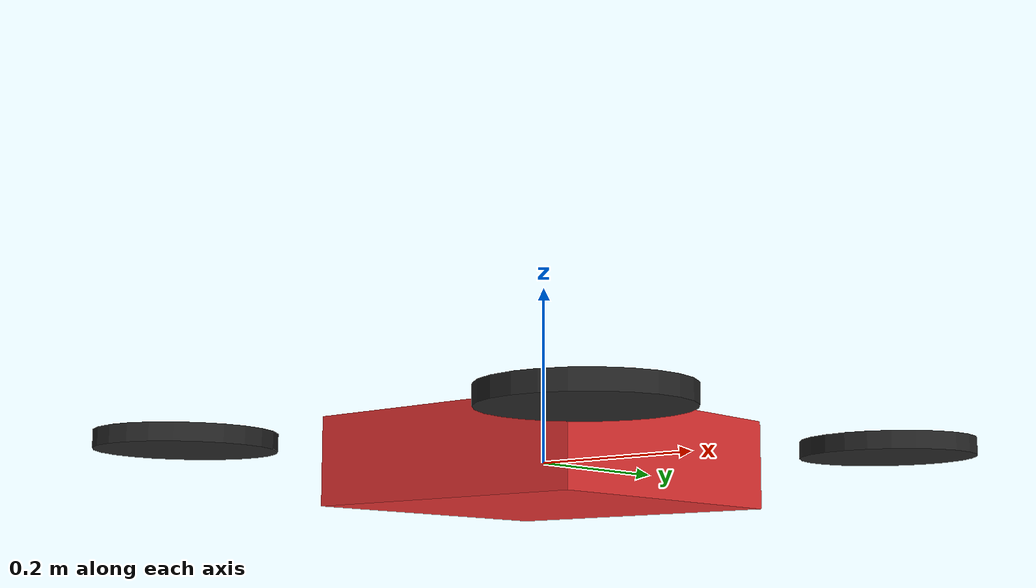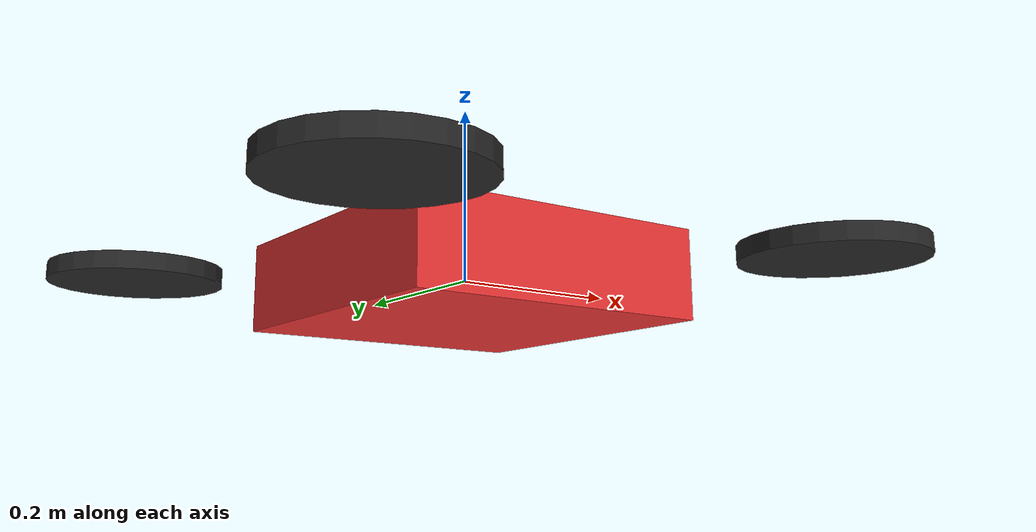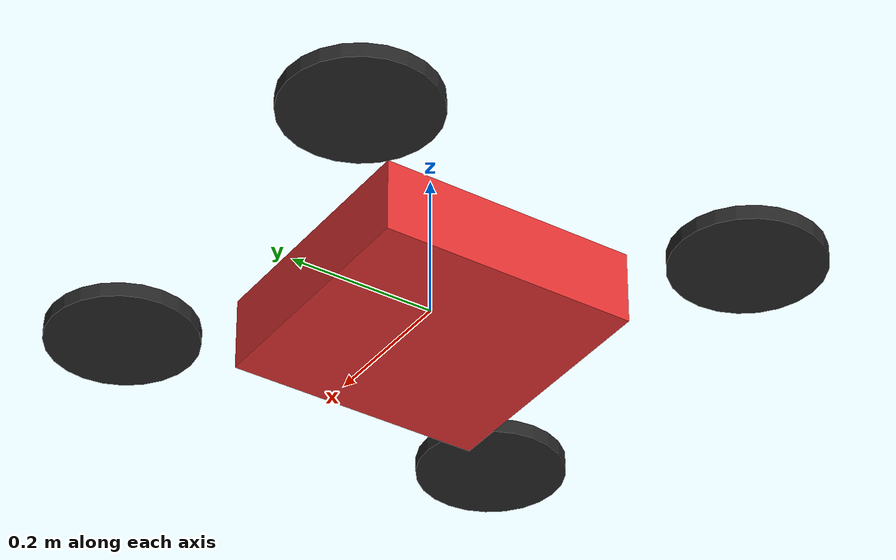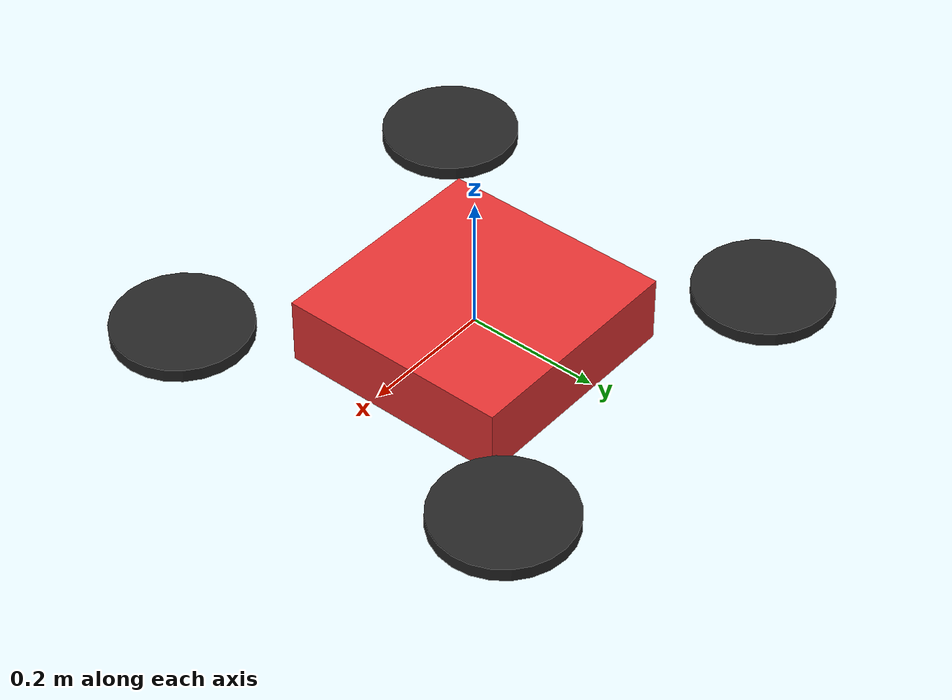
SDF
<?xml version='1.0'?>
<sdf version='1.9'>
  <model name='simple_drone'>
    <pose>0 0 0 0 0 0</pose>
    <self_collide>false</self_collide>

    <link name='body'>
      <inertial>
        <mass>1.2</mass>
        <inertia>
          <ixx>0.02</ixx><iyy>0.02</iyy><izz>0.035</izz>
          <ixy>0</ixy><ixz>0</ixz><iyz>0</iyz>
        </inertia>
      </inertial>
      <collision name='body_collision'>
        <geometry><box><size>0.35 0.35 0.10</size></box></geometry>
      </collision>
      <visual name='body_visual'>
        <geometry><box><size>0.35 0.35 0.10</size></box></geometry>
        <material><ambient>0.85 0.15 0.15 1</ambient><diffuse>0.9 0.2 0.2 1</diffuse></material>
      </visual>
      <!-- four arm+rotor visuals, purely cosmetic so it reads as a quadrotor -->
      <visual name='arm_fl'>
        <pose>0.28 0.28 0.02 0 0 0.7854</pose>
        <geometry><cylinder><radius>0.10</radius><length>0.02</length></cylinder></geometry>
        <material><ambient>0.15 0.15 0.15 1</ambient></material>
      </visual>
      <visual name='arm_fr'>
        <pose>0.28 -0.28 0.02 0 0 -0.7854</pose>
        <geometry><cylinder><radius>0.10</radius><length>0.02</length></cylinder></geometry>
        <material><ambient>0.15 0.15 0.15 1</ambient></material>
      </visual>
      <visual name='arm_bl'>
        <pose>-0.28 0.28 0.02 0 0 -0.7854</pose>
        <geometry><cylinder><radius>0.10</radius><length>0.02</length></cylinder></geometry>
        <material><ambient>0.15 0.15 0.15 1</ambient></material>
      </visual>
      <visual name='arm_br'>
        <pose>-0.28 -0.28 0.02 0 0 0.7854</pose>
        <geometry><cylinder><radius>0.10</radius><length>0.02</length></cylinder></geometry>
        <material><ambient>0.15 0.15 0.15 1</ambient></material>
      </visual>
    </link>

    <plugin filename="ignition-gazebo-velocity-control-system"
            name="gz::sim::systems::VelocityControl">
    </plugin>

    <plugin filename="ignition-gazebo-odometry-publisher-system"
            name="ignition::gazebo::systems::OdometryPublisher">
      <dimensions>3</dimensions>
    </plugin>

    <plugin filename="ignition-gazebo-pose-publisher-system"
            name="gz::sim::systems::PosePublisher">
      <publish_link_pose>true</publish_link_pose>
      <publish_collision_pose>false</publish_collision_pose>
      <publish_visual_pose>false</publish_visual_pose>
      <publish_nested_model_pose>false</publish_nested_model_pose>
    </plugin>
  </model>
</sdf>
